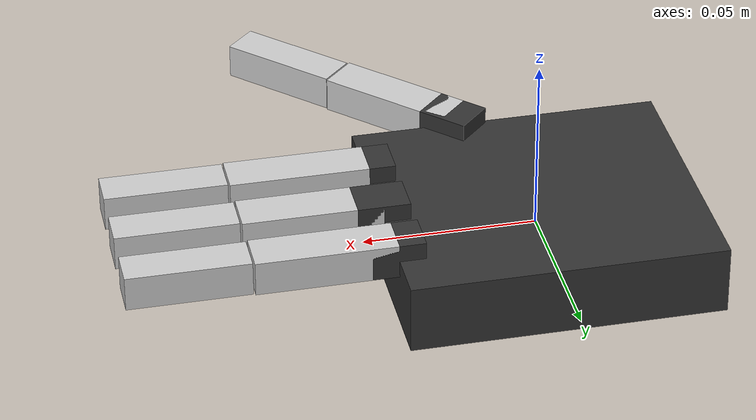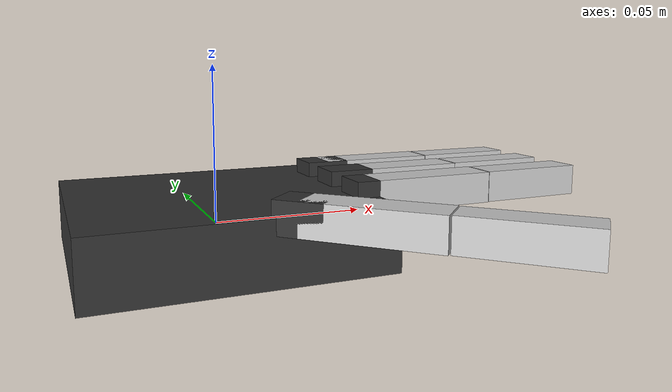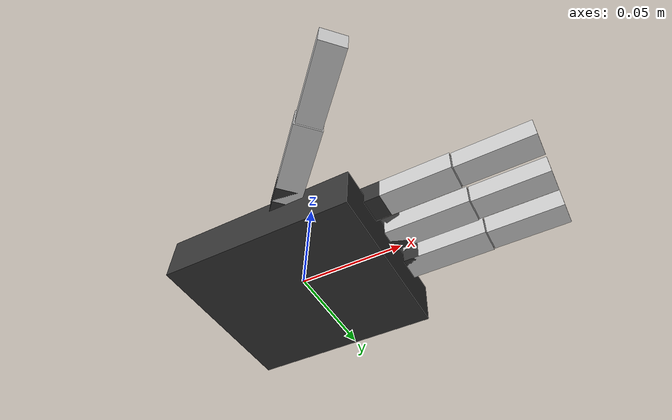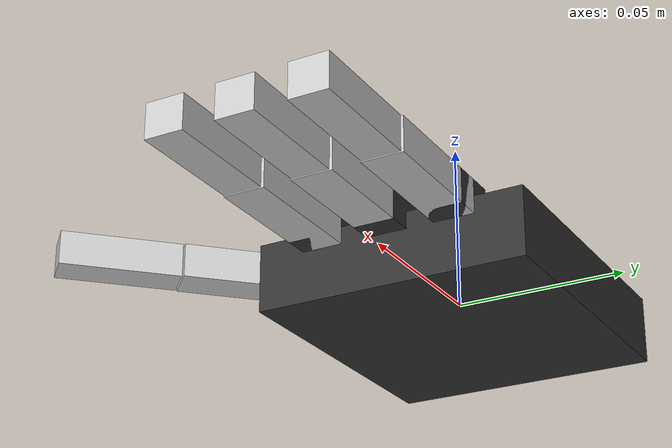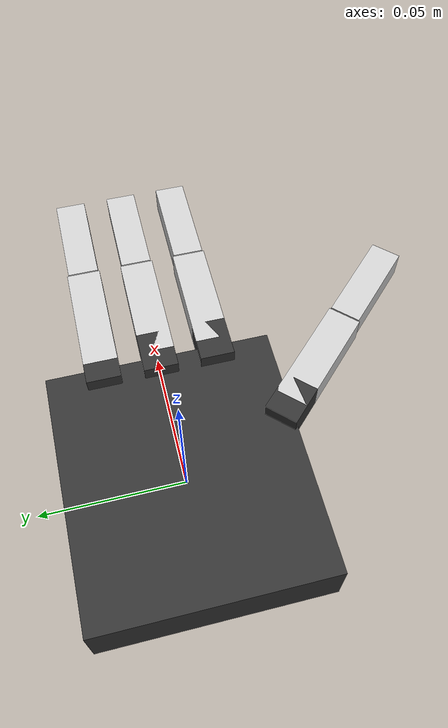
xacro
<?xml version="1.0" encoding="utf-8"?>
<robot name="amazinghand" xmlns:xacro="http://www.ros.org/wiki/xacro">

  <xacro:arg name="hand_name"   default="right_hand"/>
  <xacro:arg name="serial_port" default="/dev/ttyUSB0"/>
  <xacro:arg name="use_sim"     default="false"/>

  <xacro:include filename="$(find amazinghand_description)/urdf/finger.xacro"/>

  <!-- Palm link                                                               -->
  <link name="$(arg hand_name)_palm_link">
    <visual>
      <geometry><box size="0.090 0.080 0.020"/></geometry>
      <material name="dark_grey"><color rgba="0.2 0.2 0.2 1"/></material>
    </visual>
    <collision>
      <geometry><box size="0.090 0.080 0.020"/></geometry>
    </collision>
    <inertial>
      <mass value="0.200"/>
      <inertia ixx="1e-4" iyy="1e-4" izz="1e-4" ixy="0" ixz="0" iyz="0"/>
    </inertial>
  </link>

  <!-- edit this block to add/remove fingers. -->
  <!-- id, leader_id, follower_id must match hand.yaml -->

  <xacro:amazinghand_finger
    hand_name="$(arg hand_name)"
    finger_name="index"
    leader_id="1"  follower_id="2"
    chirality="right"
    parent="$(arg hand_name)_palm_link"
    origin_xyz="0.045  0.020 0.010"
    origin_rpy="0 0 0"/>

  <xacro:amazinghand_finger
    hand_name="$(arg hand_name)"
    finger_name="middle"
    leader_id="3"  follower_id="4"
    chirality="right"
    parent="$(arg hand_name)_palm_link"
    origin_xyz="0.045  0.000 0.010"
    origin_rpy="0 0 0"/>

  <xacro:amazinghand_finger
    hand_name="$(arg hand_name)"
    finger_name="ring"
    leader_id="5"  follower_id="6"
    chirality="right"
    parent="$(arg hand_name)_palm_link"
    origin_xyz="0.045 -0.020 0.010"
    origin_rpy="0 0 0"/>

  <xacro:amazinghand_finger
    hand_name="$(arg hand_name)"
    finger_name="thumb"
    leader_id="7"  follower_id="8"
    chirality="right"
    parent="$(arg hand_name)_palm_link"
    origin_xyz="0.015 -0.040 0.010"
    origin_rpy="0 0 -0.7854"/>

  <!-- ros2_control hardware block                                             -->
  <!-- can reconstruct FingerConfig objects without a separate YAML read.      -->
  <ros2_control name="$(arg hand_name)" type="system">

    <xacro:if value="$(arg use_sim)">
      <hardware>
        <plugin>gz_ros2_control/GazeboSimSystem</plugin>
      </hardware>
    </xacro:if>
    <xacro:unless value="$(arg use_sim)">
      <hardware>
        <plugin>amazinghand_hardware/AmazingHandHardwareInterface</plugin>
        <param name="hand_name">$(arg hand_name)</param>
        <param name="serial_port">$(arg serial_port)</param>
        <param name="baud_rate">1000000</param>
        <param name="servo_min_pos">200</param>
        <param name="servo_max_pos">824</param>
        <!-- Finger 0: index -->
        <param name="finger.0.name">index</param>
        <param name="finger.0.chirality">right</param>
        <param name="finger.0.leader_id">1</param>
        <param name="finger.0.follower_id">2</param>
        <!-- Finger 1: middle -->
        <param name="finger.1.name">middle</param>
        <param name="finger.1.chirality">right</param>
        <param name="finger.1.leader_id">3</param>
        <param name="finger.1.follower_id">4</param>
        <!-- Finger 2: ring -->
        <param name="finger.2.name">ring</param>
        <param name="finger.2.chirality">right</param>
        <param name="finger.2.leader_id">5</param>
        <param name="finger.2.follower_id">6</param>
        <!-- Finger 3: thumb -->
        <param name="finger.3.name">thumb</param>
        <param name="finger.3.chirality">right</param>
        <param name="finger.3.leader_id">7</param>
        <param name="finger.3.follower_id">8</param>
      </hardware>
    </xacro:unless>

    <!-- Semantic joints. One flexion + one abduction per finger -->
    <!-- Index -->
    <joint name="$(arg hand_name)_index_flexion">
      <command_interface name="position">
        <param name="min">-1.5708</param><param name="max">1.5708</param>
      </command_interface>
      <state_interface name="position"/>
      <state_interface name="velocity"/>
      <state_interface name="effort"/>
    </joint>
    <joint name="$(arg hand_name)_index_abduction">
      <command_interface name="position">
        <param name="min">-0.5236</param><param name="max">0.5236</param>
      </command_interface>
      <state_interface name="position"/>
      <state_interface name="velocity"/>
      <state_interface name="effort"/>
    </joint>

    <!-- Middle -->
    <joint name="$(arg hand_name)_middle_flexion">
      <command_interface name="position">
        <param name="min">-1.5708</param><param name="max">1.5708</param>
      </command_interface>
      <state_interface name="position"/>
      <state_interface name="velocity"/>
      <state_interface name="effort"/>
    </joint>
    <joint name="$(arg hand_name)_middle_abduction">
      <command_interface name="position">
        <param name="min">-0.5236</param><param name="max">0.5236</param>
      </command_interface>
      <state_interface name="position"/>
      <state_interface name="velocity"/>
      <state_interface name="effort"/>
    </joint>

    <!-- Ring -->
    <joint name="$(arg hand_name)_ring_flexion">
      <command_interface name="position">
        <param name="min">-1.5708</param><param name="max">1.5708</param>
      </command_interface>
      <state_interface name="position"/>
      <state_interface name="velocity"/>
      <state_interface name="effort"/>
    </joint>
    <joint name="$(arg hand_name)_ring_abduction">
      <command_interface name="position">
        <param name="min">-0.5236</param><param name="max">0.5236</param>
      </command_interface>
      <state_interface name="position"/>
      <state_interface name="velocity"/>
      <state_interface name="effort"/>
    </joint>

    <!-- Thumb -->
    <joint name="$(arg hand_name)_thumb_flexion">
      <command_interface name="position">
        <param name="min">-1.5708</param><param name="max">1.5708</param>
      </command_interface>
      <state_interface name="position"/>
      <state_interface name="velocity"/>
      <state_interface name="effort"/>
    </joint>
    <joint name="$(arg hand_name)_thumb_abduction">
      <command_interface name="position">
        <param name="min">-0.5236</param><param name="max">0.5236</param>
      </command_interface>
      <state_interface name="position"/>
      <state_interface name="velocity"/>
      <state_interface name="effort"/>
    </joint>

  </ros2_control>

</robot>

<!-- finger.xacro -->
<robot xmlns:xacro="http://www.ros.org/wiki/xacro">

  <xacro:macro name="amazinghand_finger"
               params="hand_name finger_name leader_id follower_id chirality
                       parent origin_xyz:='0 0 0' origin_rpy:='0 0 0'">

    <xacro:property name="jname"   value="${hand_name}_${finger_name}" />
    <xacro:property name="flex_j"  value="${jname}_flexion" />
    <xacro:property name="abd_j"   value="${jname}_abduction" />

    <!-- Finger base attaches to hand palm -->
    <link name="${jname}_base_link">
      <visual>
        <geometry><box size="0.015 0.012 0.010"/></geometry>
        <material name="dark_grey"><color rgba="0.2 0.2 0.2 1"/></material>
      </visual>
      <collision>
        <geometry><box size="0.015 0.012 0.010"/></geometry>
      </collision>
      <inertial>
        <mass value="0.010"/>
        <inertia ixx="1e-6" iyy="1e-6" izz="1e-6" ixy="0" ixz="0" iyz="0"/>
      </inertial>
    </link>

    <!-- Proximal phalanx -->
    <link name="${jname}_proximal_link">
      <visual>
        <origin xyz="0.020 0 0" rpy="0 0 0"/>
        <geometry><box size="0.040 0.012 0.010"/></geometry>
        <material name="light_grey"><color rgba="0.8 0.8 0.8 1"/></material>
      </visual>
      <collision>
        <origin xyz="0.020 0 0" rpy="0 0 0"/>
        <geometry><box size="0.040 0.012 0.010"/></geometry>
      </collision>
      <inertial>
        <mass value="0.015"/>
        <inertia ixx="1e-6" iyy="1e-6" izz="1e-6" ixy="0" ixz="0" iyz="0"/>
      </inertial>
    </link>

    <!-- Distal phalanx (both segments move together in this simplified model) -->
    <link name="${jname}_distal_link">
      <visual>
        <origin xyz="0.018 0 0" rpy="0 0 0"/>
        <geometry><box size="0.035 0.011 0.010"/></geometry>
        <material name="light_grey"><color rgba="0.8 0.8 0.8 1"/></material>
      </visual>
      <collision>
        <origin xyz="0.018 0 0" rpy="0 0 0"/>
        <geometry><box size="0.035 0.011 0.010"/></geometry>
      </collision>
      <inertial>
        <mass value="0.010"/>
        <inertia ixx="1e-6" iyy="1e-6" izz="1e-6" ixy="0" ixz="0" iyz="0"/>
      </inertial>
    </link>

    <!-- Parent base joint (fixed, positional offset on the palm)         -->
    <joint name="${jname}_mount_joint" type="fixed">
      <parent link="${parent}"/>
      <child  link="${jname}_base_link"/>
      <origin xyz="${origin_xyz}" rpy="${origin_rpy}"/>
    </joint>

    <!-- Abduction joint  (lateral spread — rotates around Z of base)       -->
    <joint name="${abd_j}" type="revolute">
      <parent link="${jname}_base_link"/>
      <child  link="${jname}_proximal_link"/>
      <origin xyz="0 0 0" rpy="0 0 0"/>
      <axis xyz="0 0 1"/>
      <limit lower="-0.5236" upper="0.5236" effort="1.0" velocity="3.14"/>
      <dynamics damping="0.01" friction="0.005"/>
    </joint>

    <!-- Flexion joint  (curl — rotates around Y of proximal link)          -->
    <joint name="${flex_j}" type="revolute">
      <parent link="${jname}_proximal_link"/>
      <child  link="${jname}_distal_link"/>
      <origin xyz="0.040 0 0" rpy="0 0 0"/>
      <axis xyz="0 1 0"/>
      <limit lower="-1.5708" upper="1.5708" effort="1.0" velocity="3.14"/>
      <dynamics damping="0.01" friction="0.005"/>
    </joint>

    <!-- ros2_control transmission tags (one per semantic joint)            -->
    <transmission name="${flex_j}_trans">
      <type>transmission_interface/SimpleTransmission</type>
      <joint name="${flex_j}">
        <hardwareInterface>hardware_interface/PositionJointInterface</hardwareInterface>
      </joint>
      <actuator name="${flex_j}_actuator">
        <hardwareInterface>hardware_interface/PositionJointInterface</hardwareInterface>
        <mechanicalReduction>1</mechanicalReduction>
      </actuator>
    </transmission>

    <transmission name="${abd_j}_trans">
      <type>transmission_interface/SimpleTransmission</type>
      <joint name="${abd_j}">
        <hardwareInterface>hardware_interface/PositionJointInterface</hardwareInterface>
      </joint>
      <actuator name="${abd_j}_actuator">
        <hardwareInterface>hardware_interface/PositionJointInterface</hardwareInterface>
        <mechanicalReduction>1</mechanicalReduction>
      </actuator>
    </transmission>

  </xacro:macro>
</robot>
